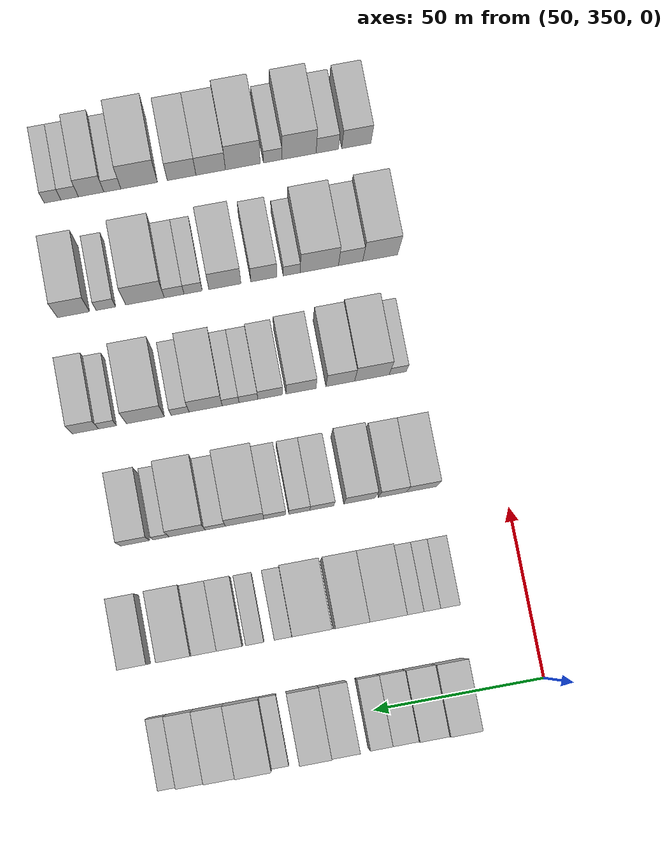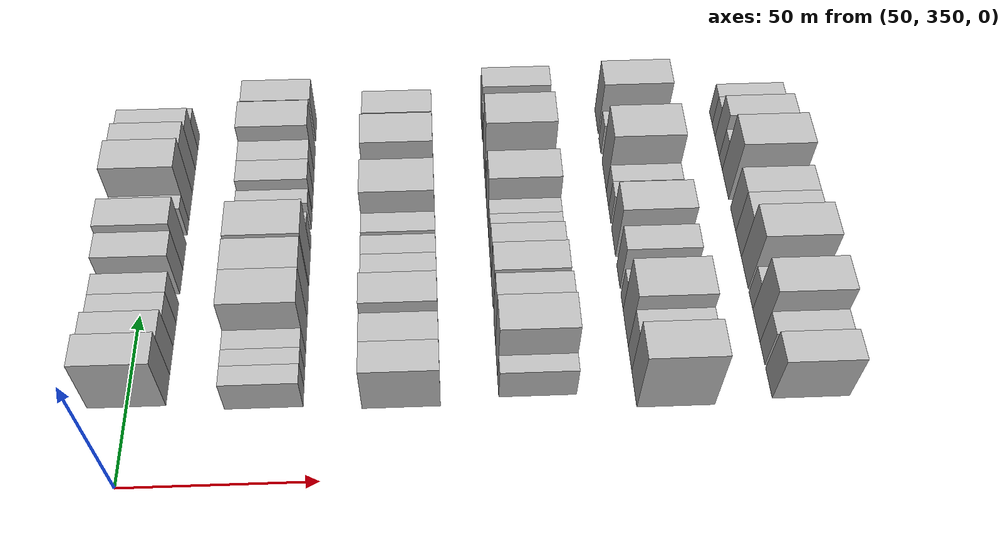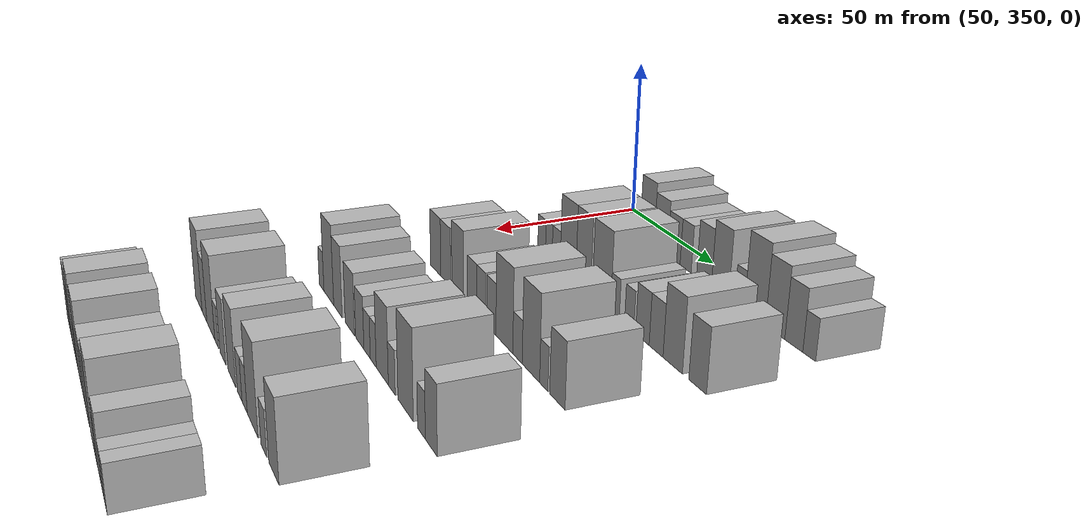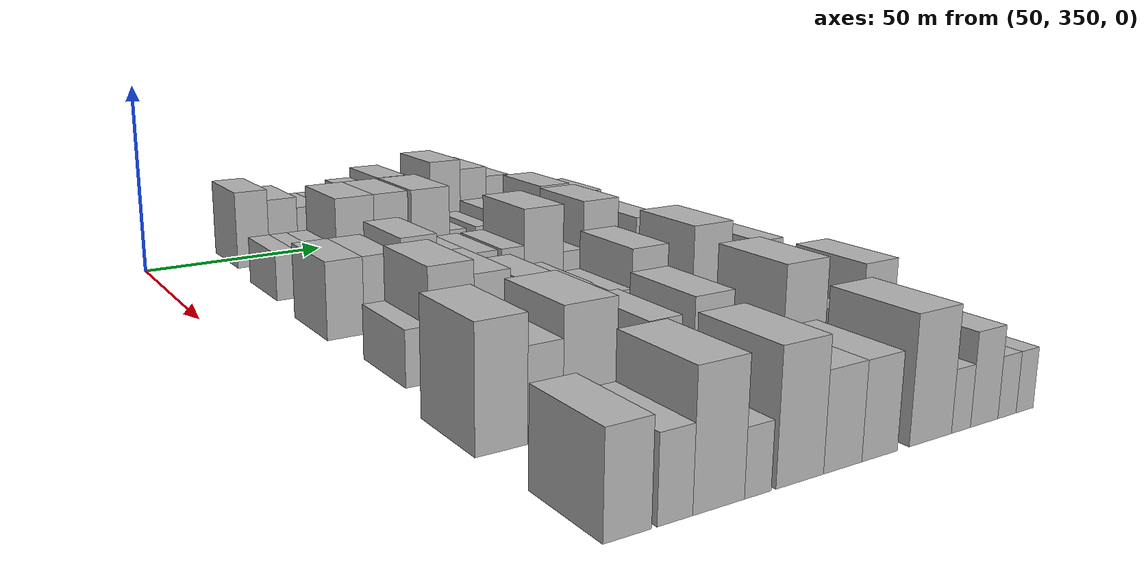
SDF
<sdf version="1.6">
 <world name="default">
  <model name="building_101">
   <static>1</static>
   <pose>50.0000 376.9715 0 0.000000 0.000000 0.000000</pose>
   <link name="link">
    <pose>0 0 10.50 0 0 0</pose>
    <collision name="collision"><geometry><box><size>20.0000 9.0543 21.0000</size></box></geometry></collision>
    <visual name="visual">
     <cast_shadows>0</cast_shadows>
     <geometry><box><size>20.0000 9.0543 21.0000</size></box></geometry>
     <material>
      <script>
       <uri>model://HANNAS_wall/materials/scripts</uri>
       <uri>model://HANNAS_wall/materials/textures</uri>
       <name>vrc/HANNAS_wall</name>
      </script>
     </material>
    </visual>
   </link>
  </model>
  <model name="building_102">
   <static>1</static>
   <pose>50.0000 385.7021 0 0.000000 0.000000 0.000000</pose>
   <link name="link">
    <pose>0 0 9.00 0 0 0</pose>
    <collision name="collision"><geometry><box><size>20.0000 8.4068 18.0000</size></box></geometry></collision>
    <visual name="visual">
     <cast_shadows>0</cast_shadows>
     <geometry><box><size>20.0000 8.4068 18.0000</size></box></geometry>
     <material>
      <script>
       <uri>model://HANNAS_wall/materials/scripts</uri>
       <uri>model://HANNAS_wall/materials/textures</uri>
       <name>vrc/HANNAS_wall</name>
      </script>
     </material>
    </visual>
   </link>
  </model>
  <model name="building_103">
   <static>1</static>
   <pose>50.0000 393.6003 0 0.000000 0.000000 0.000000</pose>
   <link name="link">
    <pose>0 0 7.50 0 0 0</pose>
    <collision name="collision"><geometry><box><size>20.0000 7.3897 15.0000</size></box></geometry></collision>
    <visual name="visual">
     <cast_shadows>0</cast_shadows>
     <geometry><box><size>20.0000 7.3897 15.0000</size></box></geometry>
     <material>
      <script>
       <uri>model://HANNAS_wall/materials/scripts</uri>
       <uri>model://HANNAS_wall/materials/textures</uri>
       <name>vrc/HANNAS_wall</name>
      </script>
     </material>
    </visual>
   </link>
  </model>
  <model name="building_104">
   <static>1</static>
   <pose>50.0000 400.5001 0 0.000000 0.000000 0.000000</pose>
   <link name="link">
    <pose>0 0 7.50 0 0 0</pose>
    <collision name="collision"><geometry><box><size>20.0000 6.4099 15.0000</size></box></geometry></collision>
    <visual name="visual">
     <cast_shadows>0</cast_shadows>
     <geometry><box><size>20.0000 6.4099 15.0000</size></box></geometry>
     <material>
      <script>
       <uri>model://HANNAS_wall/materials/scripts</uri>
       <uri>model://HANNAS_wall/materials/textures</uri>
       <name>vrc/HANNAS_wall</name>
      </script>
     </material>
    </visual>
   </link>
  </model>
  <model name="building_105">
   <static>1</static>
   <pose>50.0000 410.7465 0 0.000000 0.000000 0.000000</pose>
   <link name="link">
    <pose>0 0 9.00 0 0 0</pose>
    <collision name="collision"><geometry><box><size>20.0000 8.0827 18.0000</size></box></geometry></collision>
    <visual name="visual">
     <cast_shadows>0</cast_shadows>
     <geometry><box><size>20.0000 8.0827 18.0000</size></box></geometry>
     <material>
      <script>
       <uri>model://HANNAS_wall/materials/scripts</uri>
       <uri>model://HANNAS_wall/materials/textures</uri>
       <name>vrc/HANNAS_wall</name>
      </script>
     </material>
    </visual>
   </link>
  </model>
  <model name="building_106">
   <static>1</static>
   <pose>50.0000 419.3283 0 0.000000 0.000000 0.000000</pose>
   <link name="link">
    <pose>0 0 10.50 0 0 0</pose>
    <collision name="collision"><geometry><box><size>20.0000 9.0811 21.0000</size></box></geometry></collision>
    <visual name="visual">
     <cast_shadows>0</cast_shadows>
     <geometry><box><size>20.0000 9.0811 21.0000</size></box></geometry>
     <material>
      <script>
       <uri>model://HANNAS_wall/materials/scripts</uri>
       <uri>model://HANNAS_wall/materials/textures</uri>
       <name>vrc/HANNAS_wall</name>
      </script>
     </material>
    </visual>
   </link>
  </model>
  <model name="building_107">
   <static>1</static>
   <pose>50.0000 429.3138 0 0.000000 0.000000 0.000000</pose>
   <link name="link">
    <pose>0 0 6.00 0 0 0</pose>
    <collision name="collision"><geometry><box><size>20.0000 4.8898 12.0000</size></box></geometry></collision>
    <visual name="visual">
     <cast_shadows>0</cast_shadows>
     <geometry><box><size>20.0000 4.8898 12.0000</size></box></geometry>
     <material>
      <script>
       <uri>model://HANNAS_wall/materials/scripts</uri>
       <uri>model://HANNAS_wall/materials/textures</uri>
       <name>vrc/HANNAS_wall</name>
      </script>
     </material>
    </visual>
   </link>
  </model>
  <model name="building_108">
   <static>1</static>
   <pose>50.0000 436.8290 0 0.000000 0.000000 0.000000</pose>
   <link name="link">
    <pose>0 0 12.00 0 0 0</pose>
    <collision name="collision"><geometry><box><size>20.0000 10.1405 24.0000</size></box></geometry></collision>
    <visual name="visual">
     <cast_shadows>0</cast_shadows>
     <geometry><box><size>20.0000 10.1405 24.0000</size></box></geometry>
     <material>
      <script>
       <uri>model://HANNAS_wall/materials/scripts</uri>
       <uri>model://HANNAS_wall/materials/textures</uri>
       <name>vrc/HANNAS_wall</name>
      </script>
     </material>
    </visual>
   </link>
  </model>
  <model name="building_109">
   <static>1</static>
   <pose>50.0000 446.3508 0 0.000000 0.000000 0.000000</pose>
   <link name="link">
    <pose>0 0 10.50 0 0 0</pose>
    <collision name="collision"><geometry><box><size>20.0000 8.9032 21.0000</size></box></geometry></collision>
    <visual name="visual">
     <cast_shadows>0</cast_shadows>
     <geometry><box><size>20.0000 8.9032 21.0000</size></box></geometry>
     <material>
      <script>
       <uri>model://HANNAS_wall/materials/scripts</uri>
       <uri>model://HANNAS_wall/materials/textures</uri>
       <name>vrc/HANNAS_wall</name>
      </script>
     </material>
    </visual>
   </link>
  </model>
  <model name="building_110">
   <static>1</static>
   <pose>50.0000 454.7352 0 0.000000 0.000000 0.000000</pose>
   <link name="link">
    <pose>0 0 9.00 0 0 0</pose>
    <collision name="collision"><geometry><box><size>20.0000 7.8656 18.0000</size></box></geometry></collision>
    <visual name="visual">
     <cast_shadows>0</cast_shadows>
     <geometry><box><size>20.0000 7.8656 18.0000</size></box></geometry>
     <material>
      <script>
       <uri>model://HANNAS_wall/materials/scripts</uri>
       <uri>model://HANNAS_wall/materials/textures</uri>
       <name>vrc/HANNAS_wall</name>
      </script>
     </material>
    </visual>
   </link>
  </model>
  <model name="building_111">
   <static>1</static>
   <pose>50.0000 461.3962 0 0.000000 0.000000 0.000000</pose>
   <link name="link">
    <pose>0 0 6.00 0 0 0</pose>
    <collision name="collision"><geometry><box><size>20.0000 5.4565 12.0000</size></box></geometry></collision>
    <visual name="visual">
     <cast_shadows>0</cast_shadows>
     <geometry><box><size>20.0000 5.4565 12.0000</size></box></geometry>
     <material>
      <script>
       <uri>model://HANNAS_wall/materials/scripts</uri>
       <uri>model://HANNAS_wall/materials/textures</uri>
       <name>vrc/HANNAS_wall</name>
      </script>
     </material>
    </visual>
   </link>
  </model>
  <model name="building_227">
   <static>1</static>
   <pose>85.0000 373.6518 0 0.000000 0.000000 0.000000</pose>
   <link name="link">
    <pose>0 0 6.00 0 0 0</pose>
    <collision name="collision"><geometry><box><size>20.0000 5.6298 12.0000</size></box></geometry></collision>
    <visual name="visual">
     <cast_shadows>0</cast_shadows>
     <geometry><box><size>20.0000 5.6298 12.0000</size></box></geometry>
     <material>
      <script>
       <uri>model://HANNAS_wall/materials/scripts</uri>
       <uri>model://HANNAS_wall/materials/textures</uri>
       <name>vrc/HANNAS_wall</name>
      </script>
     </material>
    </visual>
   </link>
  </model>
  <model name="building_228">
   <static>1</static>
   <pose>85.0000 378.8743 0 0.000000 0.000000 0.000000</pose>
   <link name="link">
    <pose>0 0 6.00 0 0 0</pose>
    <collision name="collision"><geometry><box><size>20.0000 4.8153 12.0000</size></box></geometry></collision>
    <visual name="visual">
     <cast_shadows>0</cast_shadows>
     <geometry><box><size>20.0000 4.8153 12.0000</size></box></geometry>
     <material>
      <script>
       <uri>model://HANNAS_wall/materials/scripts</uri>
       <uri>model://HANNAS_wall/materials/textures</uri>
       <name>vrc/HANNAS_wall</name>
      </script>
     </material>
    </visual>
   </link>
  </model>
  <model name="building_229">
   <static>1</static>
   <pose>85.0000 384.1124 0 0.000000 0.000000 0.000000</pose>
   <link name="link">
    <pose>0 0 6.00 0 0 0</pose>
    <collision name="collision"><geometry><box><size>20.0000 5.6608 12.0000</size></box></geometry></collision>
    <visual name="visual">
     <cast_shadows>0</cast_shadows>
     <geometry><box><size>20.0000 5.6608 12.0000</size></box></geometry>
     <material>
      <script>
       <uri>model://HANNAS_wall/materials/scripts</uri>
       <uri>model://HANNAS_wall/materials/textures</uri>
       <name>vrc/HANNAS_wall</name>
      </script>
     </material>
    </visual>
   </link>
  </model>
  <model name="building_230">
   <static>1</static>
   <pose>85.0000 392.2207 0 0.000000 0.000000 0.000000</pose>
   <link name="link">
    <pose>0 0 12.00 0 0 0</pose>
    <collision name="collision"><geometry><box><size>20.0000 10.5559 24.0000</size></box></geometry></collision>
    <visual name="visual">
     <cast_shadows>0</cast_shadows>
     <geometry><box><size>20.0000 10.5559 24.0000</size></box></geometry>
     <material>
      <script>
       <uri>model://HANNAS_wall/materials/scripts</uri>
       <uri>model://HANNAS_wall/materials/textures</uri>
       <name>vrc/HANNAS_wall</name>
      </script>
     </material>
    </visual>
   </link>
  </model>
  <model name="building_231">
   <static>1</static>
   <pose>85.0000 402.3198 0 0.000000 0.000000 0.000000</pose>
   <link name="link">
    <pose>0 0 12.00 0 0 0</pose>
    <collision name="collision"><geometry><box><size>20.0000 9.6423 24.0000</size></box></geometry></collision>
    <visual name="visual">
     <cast_shadows>0</cast_shadows>
     <geometry><box><size>20.0000 9.6423 24.0000</size></box></geometry>
     <material>
      <script>
       <uri>model://HANNAS_wall/materials/scripts</uri>
       <uri>model://HANNAS_wall/materials/textures</uri>
       <name>vrc/HANNAS_wall</name>
      </script>
     </material>
    </visual>
   </link>
  </model>
  <model name="building_232">
   <static>1</static>
   <pose>85.0000 413.7458 0 0.000000 0.000000 0.000000</pose>
   <link name="link">
    <pose>0 0 12.00 0 0 0</pose>
    <collision name="collision"><geometry><box><size>20.0000 11.2096 24.0000</size></box></geometry></collision>
    <visual name="visual">
     <cast_shadows>0</cast_shadows>
     <geometry><box><size>20.0000 11.2096 24.0000</size></box></geometry>
     <material>
      <script>
       <uri>model://HANNAS_wall/materials/scripts</uri>
       <uri>model://HANNAS_wall/materials/textures</uri>
       <name>vrc/HANNAS_wall</name>
      </script>
     </material>
    </visual>
   </link>
  </model>
  <model name="building_233">
   <static>1</static>
   <pose>85.0000 421.8746 0 0.000000 0.000000 0.000000</pose>
   <link name="link">
    <pose>0 0 6.00 0 0 0</pose>
    <collision name="collision"><geometry><box><size>20.0000 5.0479 12.0000</size></box></geometry></collision>
    <visual name="visual">
     <cast_shadows>0</cast_shadows>
     <geometry><box><size>20.0000 5.0479 12.0000</size></box></geometry>
     <material>
      <script>
       <uri>model://HANNAS_wall/materials/scripts</uri>
       <uri>model://HANNAS_wall/materials/textures</uri>
       <name>vrc/HANNAS_wall</name>
      </script>
     </material>
    </visual>
   </link>
  </model>
  <model name="building_234">
   <static>1</static>
   <pose>85.0000 430.0016 0 0.000000 0.000000 0.000000</pose>
   <link name="link">
    <pose>0 0 6.00 0 0 0</pose>
    <collision name="collision"><geometry><box><size>20.0000 5.2061 12.0000</size></box></geometry></collision>
    <visual name="visual">
     <cast_shadows>0</cast_shadows>
     <geometry><box><size>20.0000 5.2061 12.0000</size></box></geometry>
     <material>
      <script>
       <uri>model://HANNAS_wall/materials/scripts</uri>
       <uri>model://HANNAS_wall/materials/textures</uri>
       <name>vrc/HANNAS_wall</name>
      </script>
     </material>
    </visual>
   </link>
  </model>
  <model name="building_235">
   <static>1</static>
   <pose>85.0000 437.2531 0 0.000000 0.000000 0.000000</pose>
   <link name="link">
    <pose>0 0 7.50 0 0 0</pose>
    <collision name="collision"><geometry><box><size>20.0000 7.2970 15.0000</size></box></geometry></collision>
    <visual name="visual">
     <cast_shadows>0</cast_shadows>
     <geometry><box><size>20.0000 7.2970 15.0000</size></box></geometry>
     <material>
      <script>
       <uri>model://HANNAS_wall/materials/scripts</uri>
       <uri>model://HANNAS_wall/materials/textures</uri>
       <name>vrc/HANNAS_wall</name>
      </script>
     </material>
    </visual>
   </link>
  </model>
  <model name="building_236">
   <static>1</static>
   <pose>85.0000 444.5015 0 0.000000 0.000000 0.000000</pose>
   <link name="link">
    <pose>0 0 7.50 0 0 0</pose>
    <collision name="collision"><geometry><box><size>20.0000 7.2000 15.0000</size></box></geometry></collision>
    <visual name="visual">
     <cast_shadows>0</cast_shadows>
     <geometry><box><size>20.0000 7.2000 15.0000</size></box></geometry>
     <material>
      <script>
       <uri>model://HANNAS_wall/materials/scripts</uri>
       <uri>model://HANNAS_wall/materials/textures</uri>
       <name>vrc/HANNAS_wall</name>
      </script>
     </material>
    </visual>
   </link>
  </model>
  <model name="building_237">
   <static>1</static>
   <pose>85.0000 452.9083 0 0.000000 0.000000 0.000000</pose>
   <link name="link">
    <pose>0 0 10.50 0 0 0</pose>
    <collision name="collision"><geometry><box><size>20.0000 9.6135 21.0000</size></box></geometry></collision>
    <visual name="visual">
     <cast_shadows>0</cast_shadows>
     <geometry><box><size>20.0000 9.6135 21.0000</size></box></geometry>
     <material>
      <script>
       <uri>model://HANNAS_wall/materials/scripts</uri>
       <uri>model://HANNAS_wall/materials/textures</uri>
       <name>vrc/HANNAS_wall</name>
      </script>
     </material>
    </visual>
   </link>
  </model>
  <model name="building_238">
   <static>1</static>
   <pose>85.0000 464.8194 0 0.000000 0.000000 0.000000</pose>
   <link name="link">
    <pose>0 0 9.00 0 0 0</pose>
    <collision name="collision"><geometry><box><size>20.0000 8.2087 18.0000</size></box></geometry></collision>
    <visual name="visual">
     <cast_shadows>0</cast_shadows>
     <geometry><box><size>20.0000 8.2087 18.0000</size></box></geometry>
     <material>
      <script>
       <uri>model://HANNAS_wall/materials/scripts</uri>
       <uri>model://HANNAS_wall/materials/textures</uri>
       <name>vrc/HANNAS_wall</name>
      </script>
     </material>
    </visual>
   </link>
  </model>
  <model name="building_357">
   <static>1</static>
   <pose>120.0000 374.1642 0 0.000000 0.000000 0.000000</pose>
   <link name="link">
    <pose>0 0 9.00 0 0 0</pose>
    <collision name="collision"><geometry><box><size>20.0000 8.9118 18.0000</size></box></geometry></collision>
    <visual name="visual">
     <cast_shadows>0</cast_shadows>
     <geometry><box><size>20.0000 8.9118 18.0000</size></box></geometry>
     <material>
      <script>
       <uri>model://HANNAS_wall/materials/scripts</uri>
       <uri>model://HANNAS_wall/materials/textures</uri>
       <name>vrc/HANNAS_wall</name>
      </script>
     </material>
    </visual>
   </link>
  </model>
  <model name="building_358">
   <static>1</static>
   <pose>120.0000 382.7913 0 0.000000 0.000000 0.000000</pose>
   <link name="link">
    <pose>0 0 9.00 0 0 0</pose>
    <collision name="collision"><geometry><box><size>20.0000 8.3424 18.0000</size></box></geometry></collision>
    <visual name="visual">
     <cast_shadows>0</cast_shadows>
     <geometry><box><size>20.0000 8.3424 18.0000</size></box></geometry>
     <material>
      <script>
       <uri>model://HANNAS_wall/materials/scripts</uri>
       <uri>model://HANNAS_wall/materials/textures</uri>
       <name>vrc/HANNAS_wall</name>
      </script>
     </material>
    </visual>
   </link>
  </model>
  <model name="building_359">
   <static>1</static>
   <pose>120.0000 392.5928 0 0.000000 0.000000 0.000000</pose>
   <link name="link">
    <pose>0 0 10.50 0 0 0</pose>
    <collision name="collision"><geometry><box><size>20.0000 9.2606 21.0000</size></box></geometry></collision>
    <visual name="visual">
     <cast_shadows>0</cast_shadows>
     <geometry><box><size>20.0000 9.2606 21.0000</size></box></geometry>
     <material>
      <script>
       <uri>model://HANNAS_wall/materials/scripts</uri>
       <uri>model://HANNAS_wall/materials/textures</uri>
       <name>vrc/HANNAS_wall</name>
      </script>
     </material>
    </visual>
   </link>
  </model>
  <model name="building_360">
   <static>1</static>
   <pose>120.0000 403.7925 0 0.000000 0.000000 0.000000</pose>
   <link name="link">
    <pose>0 0 7.50 0 0 0</pose>
    <collision name="collision"><geometry><box><size>20.0000 7.1389 15.0000</size></box></geometry></collision>
    <visual name="visual">
     <cast_shadows>0</cast_shadows>
     <geometry><box><size>20.0000 7.1389 15.0000</size></box></geometry>
     <material>
      <script>
       <uri>model://HANNAS_wall/materials/scripts</uri>
       <uri>model://HANNAS_wall/materials/textures</uri>
       <name>vrc/HANNAS_wall</name>
      </script>
     </material>
    </visual>
   </link>
  </model>
  <model name="building_361">
   <static>1</static>
   <pose>120.0000 410.4511 0 0.000000 0.000000 0.000000</pose>
   <link name="link">
    <pose>0 0 7.50 0 0 0</pose>
    <collision name="collision"><geometry><box><size>20.0000 6.1782 15.0000</size></box></geometry></collision>
    <visual name="visual">
     <cast_shadows>0</cast_shadows>
     <geometry><box><size>20.0000 6.1782 15.0000</size></box></geometry>
     <material>
      <script>
       <uri>model://HANNAS_wall/materials/scripts</uri>
       <uri>model://HANNAS_wall/materials/textures</uri>
       <name>vrc/HANNAS_wall</name>
      </script>
     </material>
    </visual>
   </link>
  </model>
  <model name="building_362">
   <static>1</static>
   <pose>120.0000 417.7788 0 0.000000 0.000000 0.000000</pose>
   <link name="link">
    <pose>0 0 7.50 0 0 0</pose>
    <collision name="collision"><geometry><box><size>20.0000 6.4772 15.0000</size></box></geometry></collision>
    <visual name="visual">
     <cast_shadows>0</cast_shadows>
     <geometry><box><size>20.0000 6.4772 15.0000</size></box></geometry>
     <material>
      <script>
       <uri>model://HANNAS_wall/materials/scripts</uri>
       <uri>model://HANNAS_wall/materials/textures</uri>
       <name>vrc/HANNAS_wall</name>
      </script>
     </material>
    </visual>
   </link>
  </model>
  <model name="building_363">
   <static>1</static>
   <pose>120.0000 426.6754 0 0.000000 0.000000 0.000000</pose>
   <link name="link">
    <pose>0 0 12.00 0 0 0</pose>
    <collision name="collision"><geometry><box><size>20.0000 11.3161 24.0000</size></box></geometry></collision>
    <visual name="visual">
     <cast_shadows>0</cast_shadows>
     <geometry><box><size>20.0000 11.3161 24.0000</size></box></geometry>
     <material>
      <script>
       <uri>model://HANNAS_wall/materials/scripts</uri>
       <uri>model://HANNAS_wall/materials/textures</uri>
       <name>vrc/HANNAS_wall</name>
      </script>
     </material>
    </visual>
   </link>
  </model>
  <model name="building_364">
   <static>1</static>
   <pose>120.0000 435.3300 0 0.000000 0.000000 0.000000</pose>
   <link name="link">
    <pose>0 0 6.00 0 0 0</pose>
    <collision name="collision"><geometry><box><size>20.0000 5.9932 12.0000</size></box></geometry></collision>
    <visual name="visual">
     <cast_shadows>0</cast_shadows>
     <geometry><box><size>20.0000 5.9932 12.0000</size></box></geometry>
     <material>
      <script>
       <uri>model://HANNAS_wall/materials/scripts</uri>
       <uri>model://HANNAS_wall/materials/textures</uri>
       <name>vrc/HANNAS_wall</name>
      </script>
     </material>
    </visual>
   </link>
  </model>
  <model name="building_365">
   <static>1</static>
   <pose>120.0000 443.6396 0 0.000000 0.000000 0.000000</pose>
   <link name="link">
    <pose>0 0 12.00 0 0 0</pose>
    <collision name="collision"><geometry><box><size>20.0000 10.6261 24.0000</size></box></geometry></collision>
    <visual name="visual">
     <cast_shadows>0</cast_shadows>
     <geometry><box><size>20.0000 10.6261 24.0000</size></box></geometry>
     <material>
      <script>
       <uri>model://HANNAS_wall/materials/scripts</uri>
       <uri>model://HANNAS_wall/materials/textures</uri>
       <name>vrc/HANNAS_wall</name>
      </script>
     </material>
    </visual>
   </link>
  </model>
  <model name="building_366">
   <static>1</static>
   <pose>120.0000 451.3530 0 0.000000 0.000000 0.000000</pose>
   <link name="link">
    <pose>0 0 6.00 0 0 0</pose>
    <collision name="collision"><geometry><box><size>20.0000 4.8008 12.0000</size></box></geometry></collision>
    <visual name="visual">
     <cast_shadows>0</cast_shadows>
     <geometry><box><size>20.0000 4.8008 12.0000</size></box></geometry>
     <material>
      <script>
       <uri>model://HANNAS_wall/materials/scripts</uri>
       <uri>model://HANNAS_wall/materials/textures</uri>
       <name>vrc/HANNAS_wall</name>
      </script>
     </material>
    </visual>
   </link>
  </model>
  <model name="building_367">
   <static>1</static>
   <pose>120.0000 459.0405 0 0.000000 0.000000 0.000000</pose>
   <link name="link">
    <pose>0 0 9.00 0 0 0</pose>
    <collision name="collision"><geometry><box><size>20.0000 8.5742 18.0000</size></box></geometry></collision>
    <visual name="visual">
     <cast_shadows>0</cast_shadows>
     <geometry><box><size>20.0000 8.5742 18.0000</size></box></geometry>
     <material>
      <script>
       <uri>model://HANNAS_wall/materials/scripts</uri>
       <uri>model://HANNAS_wall/materials/textures</uri>
       <name>vrc/HANNAS_wall</name>
      </script>
     </material>
    </visual>
   </link>
  </model>
  <model name="building_483">
   <static>1</static>
   <pose>155.0000 374.3018 0 0.000000 0.000000 0.000000</pose>
   <link name="link">
    <pose>0 0 6.00 0 0 0</pose>
    <collision name="collision"><geometry><box><size>20.0000 5.1540 12.0000</size></box></geometry></collision>
    <visual name="visual">
     <cast_shadows>0</cast_shadows>
     <geometry><box><size>20.0000 5.1540 12.0000</size></box></geometry>
     <material>
      <script>
       <uri>model://HANNAS_wall/materials/scripts</uri>
       <uri>model://HANNAS_wall/materials/textures</uri>
       <name>vrc/HANNAS_wall</name>
      </script>
     </material>
    </visual>
   </link>
  </model>
  <model name="building_484">
   <static>1</static>
   <pose>155.0000 382.0667 0 0.000000 0.000000 0.000000</pose>
   <link name="link">
    <pose>0 0 12.00 0 0 0</pose>
    <collision name="collision"><geometry><box><size>20.0000 10.3757 24.0000</size></box></geometry></collision>
    <visual name="visual">
     <cast_shadows>0</cast_shadows>
     <geometry><box><size>20.0000 10.3757 24.0000</size></box></geometry>
     <material>
      <script>
       <uri>model://HANNAS_wall/materials/scripts</uri>
       <uri>model://HANNAS_wall/materials/textures</uri>
       <name>vrc/HANNAS_wall</name>
      </script>
     </material>
    </visual>
   </link>
  </model>
  <model name="building_485">
   <static>1</static>
   <pose>155.0000 391.5425 0 0.000000 0.000000 0.000000</pose>
   <link name="link">
    <pose>0 0 10.50 0 0 0</pose>
    <collision name="collision"><geometry><box><size>20.0000 8.5760 21.0000</size></box></geometry></collision>
    <visual name="visual">
     <cast_shadows>0</cast_shadows>
     <geometry><box><size>20.0000 8.5760 21.0000</size></box></geometry>
     <material>
      <script>
       <uri>model://HANNAS_wall/materials/scripts</uri>
       <uri>model://HANNAS_wall/materials/textures</uri>
       <name>vrc/HANNAS_wall</name>
      </script>
     </material>
    </visual>
   </link>
  </model>
  <model name="building_486">
   <static>1</static>
   <pose>155.0000 403.3199 0 0.000000 0.000000 0.000000</pose>
   <link name="link">
    <pose>0 0 9.00 0 0 0</pose>
    <collision name="collision"><geometry><box><size>20.0000 8.9786 18.0000</size></box></geometry></collision>
    <visual name="visual">
     <cast_shadows>0</cast_shadows>
     <geometry><box><size>20.0000 8.9786 18.0000</size></box></geometry>
     <material>
      <script>
       <uri>model://HANNAS_wall/materials/scripts</uri>
       <uri>model://HANNAS_wall/materials/textures</uri>
       <name>vrc/HANNAS_wall</name>
      </script>
     </material>
    </visual>
   </link>
  </model>
  <model name="building_487">
   <static>1</static>
   <pose>155.0000 412.5321 0 0.000000 0.000000 0.000000</pose>
   <link name="link">
    <pose>0 0 7.50 0 0 0</pose>
    <collision name="collision"><geometry><box><size>20.0000 7.4459 15.0000</size></box></geometry></collision>
    <visual name="visual">
     <cast_shadows>0</cast_shadows>
     <geometry><box><size>20.0000 7.4459 15.0000</size></box></geometry>
     <material>
      <script>
       <uri>model://HANNAS_wall/materials/scripts</uri>
       <uri>model://HANNAS_wall/materials/textures</uri>
       <name>vrc/HANNAS_wall</name>
      </script>
     </material>
    </visual>
   </link>
  </model>
  <model name="building_488">
   <static>1</static>
   <pose>155.0000 419.0543 0 0.000000 0.000000 0.000000</pose>
   <link name="link">
    <pose>0 0 6.00 0 0 0</pose>
    <collision name="collision"><geometry><box><size>20.0000 5.5986 12.0000</size></box></geometry></collision>
    <visual name="visual">
     <cast_shadows>0</cast_shadows>
     <geometry><box><size>20.0000 5.5986 12.0000</size></box></geometry>
     <material>
      <script>
       <uri>model://HANNAS_wall/materials/scripts</uri>
       <uri>model://HANNAS_wall/materials/textures</uri>
       <name>vrc/HANNAS_wall</name>
      </script>
     </material>
    </visual>
   </link>
  </model>
  <model name="building_489">
   <static>1</static>
   <pose>155.0000 424.3448 0 0.000000 0.000000 0.000000</pose>
   <link name="link">
    <pose>0 0 6.00 0 0 0</pose>
    <collision name="collision"><geometry><box><size>20.0000 4.9825 12.0000</size></box></geometry></collision>
    <visual name="visual">
     <cast_shadows>0</cast_shadows>
     <geometry><box><size>20.0000 4.9825 12.0000</size></box></geometry>
     <material>
      <script>
       <uri>model://HANNAS_wall/materials/scripts</uri>
       <uri>model://HANNAS_wall/materials/textures</uri>
       <name>vrc/HANNAS_wall</name>
      </script>
     </material>
    </visual>
   </link>
  </model>
  <model name="building_490">
   <static>1</static>
   <pose>155.0000 431.7964 0 0.000000 0.000000 0.000000</pose>
   <link name="link">
    <pose>0 0 10.50 0 0 0</pose>
    <collision name="collision"><geometry><box><size>20.0000 9.9206 21.0000</size></box></geometry></collision>
    <visual name="visual">
     <cast_shadows>0</cast_shadows>
     <geometry><box><size>20.0000 9.9206 21.0000</size></box></geometry>
     <material>
      <script>
       <uri>model://HANNAS_wall/materials/scripts</uri>
       <uri>model://HANNAS_wall/materials/textures</uri>
       <name>vrc/HANNAS_wall</name>
      </script>
     </material>
    </visual>
   </link>
  </model>
  <model name="building_491">
   <static>1</static>
   <pose>155.0000 439.4414 0 0.000000 0.000000 0.000000</pose>
   <link name="link">
    <pose>0 0 6.00 0 0 0</pose>
    <collision name="collision"><geometry><box><size>20.0000 5.3695 12.0000</size></box></geometry></collision>
    <visual name="visual">
     <cast_shadows>0</cast_shadows>
     <geometry><box><size>20.0000 5.3695 12.0000</size></box></geometry>
     <material>
      <script>
       <uri>model://HANNAS_wall/materials/scripts</uri>
       <uri>model://HANNAS_wall/materials/textures</uri>
       <name>vrc/HANNAS_wall</name>
      </script>
     </material>
    </visual>
   </link>
  </model>
  <model name="building_492">
   <static>1</static>
   <pose>155.0000 449.7636 0 0.000000 0.000000 0.000000</pose>
   <link name="link">
    <pose>0 0 12.00 0 0 0</pose>
    <collision name="collision"><geometry><box><size>20.0000 11.2748 24.0000</size></box></geometry></collision>
    <visual name="visual">
     <cast_shadows>0</cast_shadows>
     <geometry><box><size>20.0000 11.2748 24.0000</size></box></geometry>
     <material>
      <script>
       <uri>model://HANNAS_wall/materials/scripts</uri>
       <uri>model://HANNAS_wall/materials/textures</uri>
       <name>vrc/HANNAS_wall</name>
      </script>
     </material>
    </visual>
   </link>
  </model>
  <model name="building_493">
   <static>1</static>
   <pose>155.0000 461.0590 0 0.000000 0.000000 0.000000</pose>
   <link name="link">
    <pose>0 0 6.00 0 0 0</pose>
    <collision name="collision"><geometry><box><size>20.0000 5.3159 12.0000</size></box></geometry></collision>
    <visual name="visual">
     <cast_shadows>0</cast_shadows>
     <geometry><box><size>20.0000 5.3159 12.0000</size></box></geometry>
     <material>
      <script>
       <uri>model://HANNAS_wall/materials/scripts</uri>
       <uri>model://HANNAS_wall/materials/textures</uri>
       <name>vrc/HANNAS_wall</name>
      </script>
     </material>
    </visual>
   </link>
  </model>
  <model name="building_494">
   <static>1</static>
   <pose>155.0000 467.6282 0 0.000000 0.000000 0.000000</pose>
   <link name="link">
    <pose>0 0 9.00 0 0 0</pose>
    <collision name="collision"><geometry><box><size>20.0000 7.8225 18.0000</size></box></geometry></collision>
    <visual name="visual">
     <cast_shadows>0</cast_shadows>
     <geometry><box><size>20.0000 7.8225 18.0000</size></box></geometry>
     <material>
      <script>
       <uri>model://HANNAS_wall/materials/scripts</uri>
       <uri>model://HANNAS_wall/materials/textures</uri>
       <name>vrc/HANNAS_wall</name>
      </script>
     </material>
    </visual>
   </link>
  </model>
  <model name="building_606">
   <static>1</static>
   <pose>190.0000 372.7146 0 0.000000 0.000000 0.000000</pose>
   <link name="link">
    <pose>0 0 12.00 0 0 0</pose>
    <collision name="collision"><geometry><box><size>20.0000 10.5319 24.0000</size></box></geometry></collision>
    <visual name="visual">
     <cast_shadows>0</cast_shadows>
     <geometry><box><size>20.0000 10.5319 24.0000</size></box></geometry>
     <material>
      <script>
       <uri>model://HANNAS_wall/materials/scripts</uri>
       <uri>model://HANNAS_wall/materials/textures</uri>
       <name>vrc/HANNAS_wall</name>
      </script>
     </material>
    </visual>
   </link>
  </model>
  <model name="building_607">
   <static>1</static>
   <pose>190.0000 381.6536 0 0.000000 0.000000 0.000000</pose>
   <link name="link">
    <pose>0 0 9.00 0 0 0</pose>
    <collision name="collision"><geometry><box><size>20.0000 7.3461 18.0000</size></box></geometry></collision>
    <visual name="visual">
     <cast_shadows>0</cast_shadows>
     <geometry><box><size>20.0000 7.3461 18.0000</size></box></geometry>
     <material>
      <script>
       <uri>model://HANNAS_wall/materials/scripts</uri>
       <uri>model://HANNAS_wall/materials/textures</uri>
       <name>vrc/HANNAS_wall</name>
      </script>
     </material>
    </visual>
   </link>
  </model>
  <model name="building_608">
   <static>1</static>
   <pose>190.0000 391.1220 0 0.000000 0.000000 0.000000</pose>
   <link name="link">
    <pose>0 0 12.00 0 0 0</pose>
    <collision name="collision"><geometry><box><size>20.0000 11.5907 24.0000</size></box></geometry></collision>
    <visual name="visual">
     <cast_shadows>0</cast_shadows>
     <geometry><box><size>20.0000 11.5907 24.0000</size></box></geometry>
     <material>
      <script>
       <uri>model://HANNAS_wall/materials/scripts</uri>
       <uri>model://HANNAS_wall/materials/textures</uri>
       <name>vrc/HANNAS_wall</name>
      </script>
     </material>
    </visual>
   </link>
  </model>
  <model name="building_609">
   <static>1</static>
   <pose>190.0000 399.4624 0 0.000000 0.000000 0.000000</pose>
   <link name="link">
    <pose>0 0 6.00 0 0 0</pose>
    <collision name="collision"><geometry><box><size>20.0000 5.0900 12.0000</size></box></geometry></collision>
    <visual name="visual">
     <cast_shadows>0</cast_shadows>
     <geometry><box><size>20.0000 5.0900 12.0000</size></box></geometry>
     <material>
      <script>
       <uri>model://HANNAS_wall/materials/scripts</uri>
       <uri>model://HANNAS_wall/materials/textures</uri>
       <name>vrc/HANNAS_wall</name>
      </script>
     </material>
    </visual>
   </link>
  </model>
  <model name="building_610">
   <static>1</static>
   <pose>190.0000 407.8961 0 0.000000 0.000000 0.000000</pose>
   <link name="link">
    <pose>0 0 9.00 0 0 0</pose>
    <collision name="collision"><geometry><box><size>20.0000 7.7774 18.0000</size></box></geometry></collision>
    <visual name="visual">
     <cast_shadows>0</cast_shadows>
     <geometry><box><size>20.0000 7.7774 18.0000</size></box></geometry>
     <material>
      <script>
       <uri>model://HANNAS_wall/materials/scripts</uri>
       <uri>model://HANNAS_wall/materials/textures</uri>
       <name>vrc/HANNAS_wall</name>
      </script>
     </material>
    </visual>
   </link>
  </model>
  <model name="building_611">
   <static>1</static>
   <pose>190.0000 419.6159 0 0.000000 0.000000 0.000000</pose>
   <link name="link">
    <pose>0 0 10.50 0 0 0</pose>
    <collision name="collision"><geometry><box><size>20.0000 9.6622 21.0000</size></box></geometry></collision>
    <visual name="visual">
     <cast_shadows>0</cast_shadows>
     <geometry><box><size>20.0000 9.6622 21.0000</size></box></geometry>
     <material>
      <script>
       <uri>model://HANNAS_wall/materials/scripts</uri>
       <uri>model://HANNAS_wall/materials/textures</uri>
       <name>vrc/HANNAS_wall</name>
      </script>
     </material>
    </visual>
   </link>
  </model>
  <model name="building_612">
   <static>1</static>
   <pose>190.0000 429.1848 0 0.000000 0.000000 0.000000</pose>
   <link name="link">
    <pose>0 0 6.00 0 0 0</pose>
    <collision name="collision"><geometry><box><size>20.0000 5.4756 12.0000</size></box></geometry></collision>
    <visual name="visual">
     <cast_shadows>0</cast_shadows>
     <geometry><box><size>20.0000 5.4756 12.0000</size></box></geometry>
     <material>
      <script>
       <uri>model://HANNAS_wall/materials/scripts</uri>
       <uri>model://HANNAS_wall/materials/textures</uri>
       <name>vrc/HANNAS_wall</name>
      </script>
     </material>
    </visual>
   </link>
  </model>
  <model name="building_613">
   <static>1</static>
   <pose>190.0000 434.9047 0 0.000000 0.000000 0.000000</pose>
   <link name="link">
    <pose>0 0 6.00 0 0 0</pose>
    <collision name="collision"><geometry><box><size>20.0000 5.9642 12.0000</size></box></geometry></collision>
    <visual name="visual">
     <cast_shadows>0</cast_shadows>
     <geometry><box><size>20.0000 5.9642 12.0000</size></box></geometry>
     <material>
      <script>
       <uri>model://HANNAS_wall/materials/scripts</uri>
       <uri>model://HANNAS_wall/materials/textures</uri>
       <name>vrc/HANNAS_wall</name>
      </script>
     </material>
    </visual>
   </link>
  </model>
  <model name="building_614">
   <static>1</static>
   <pose>190.0000 443.7091 0 0.000000 0.000000 0.000000</pose>
   <link name="link">
    <pose>0 0 12.00 0 0 0</pose>
    <collision name="collision"><geometry><box><size>20.0000 11.6445 24.0000</size></box></geometry></collision>
    <visual name="visual">
     <cast_shadows>0</cast_shadows>
     <geometry><box><size>20.0000 11.6445 24.0000</size></box></geometry>
     <material>
      <script>
       <uri>model://HANNAS_wall/materials/scripts</uri>
       <uri>model://HANNAS_wall/materials/textures</uri>
       <name>vrc/HANNAS_wall</name>
      </script>
     </material>
    </visual>
   </link>
  </model>
  <model name="building_615">
   <static>1</static>
   <pose>190.0000 455.4534 0 0.000000 0.000000 0.000000</pose>
   <link name="link">
    <pose>0 0 6.00 0 0 0</pose>
    <collision name="collision"><geometry><box><size>20.0000 5.8441 12.0000</size></box></geometry></collision>
    <visual name="visual">
     <cast_shadows>0</cast_shadows>
     <geometry><box><size>20.0000 5.8441 12.0000</size></box></geometry>
     <material>
      <script>
       <uri>model://HANNAS_wall/materials/scripts</uri>
       <uri>model://HANNAS_wall/materials/textures</uri>
       <name>vrc/HANNAS_wall</name>
      </script>
     </material>
    </visual>
   </link>
  </model>
  <model name="building_616">
   <static>1</static>
   <pose>190.0000 465.1991 0 0.000000 0.000000 0.000000</pose>
   <link name="link">
    <pose>0 0 10.50 0 0 0</pose>
    <collision name="collision"><geometry><box><size>20.0000 9.6474 21.0000</size></box></geometry></collision>
    <visual name="visual">
     <cast_shadows>0</cast_shadows>
     <geometry><box><size>20.0000 9.6474 21.0000</size></box></geometry>
     <material>
      <script>
       <uri>model://HANNAS_wall/materials/scripts</uri>
       <uri>model://HANNAS_wall/materials/textures</uri>
       <name>vrc/HANNAS_wall</name>
      </script>
     </material>
    </visual>
   </link>
  </model>
  <model name="building_735">
   <static>1</static>
   <pose>225.0000 373.1341 0 0.000000 0.000000 0.000000</pose>
   <link name="link">
    <pose>0 0 9.00 0 0 0</pose>
    <collision name="collision"><geometry><box><size>20.0000 8.8824 18.0000</size></box></geometry></collision>
    <visual name="visual">
     <cast_shadows>0</cast_shadows>
     <geometry><box><size>20.0000 8.8824 18.0000</size></box></geometry>
     <material>
      <script>
       <uri>model://HANNAS_wall/materials/scripts</uri>
       <uri>model://HANNAS_wall/materials/textures</uri>
       <name>vrc/HANNAS_wall</name>
      </script>
     </material>
    </visual>
   </link>
  </model>
  <model name="building_736">
   <static>1</static>
   <pose>225.0000 381.9895 0 0.000000 0.000000 0.000000</pose>
   <link name="link">
    <pose>0 0 7.50 0 0 0</pose>
    <collision name="collision"><geometry><box><size>20.0000 6.8284 15.0000</size></box></geometry></collision>
    <visual name="visual">
     <cast_shadows>0</cast_shadows>
     <geometry><box><size>20.0000 6.8284 15.0000</size></box></geometry>
     <material>
      <script>
       <uri>model://HANNAS_wall/materials/scripts</uri>
       <uri>model://HANNAS_wall/materials/textures</uri>
       <name>vrc/HANNAS_wall</name>
      </script>
     </material>
    </visual>
   </link>
  </model>
  <model name="building_737">
   <static>1</static>
   <pose>225.0000 390.6119 0 0.000000 0.000000 0.000000</pose>
   <link name="link">
    <pose>0 0 12.00 0 0 0</pose>
    <collision name="collision"><geometry><box><size>20.0000 10.4163 24.0000</size></box></geometry></collision>
    <visual name="visual">
     <cast_shadows>0</cast_shadows>
     <geometry><box><size>20.0000 10.4163 24.0000</size></box></geometry>
     <material>
      <script>
       <uri>model://HANNAS_wall/materials/scripts</uri>
       <uri>model://HANNAS_wall/materials/textures</uri>
       <name>vrc/HANNAS_wall</name>
      </script>
     </material>
    </visual>
   </link>
  </model>
  <model name="building_738">
   <static>1</static>
   <pose>225.0000 398.6453 0 0.000000 0.000000 0.000000</pose>
   <link name="link">
    <pose>0 0 6.00 0 0 0</pose>
    <collision name="collision"><geometry><box><size>20.0000 5.6505 12.0000</size></box></geometry></collision>
    <visual name="visual">
     <cast_shadows>0</cast_shadows>
     <geometry><box><size>20.0000 5.6505 12.0000</size></box></geometry>
     <material>
      <script>
       <uri>model://HANNAS_wall/materials/scripts</uri>
       <uri>model://HANNAS_wall/materials/textures</uri>
       <name>vrc/HANNAS_wall</name>
      </script>
     </material>
    </visual>
   </link>
  </model>
  <model name="building_739">
   <static>1</static>
   <pose>225.0000 407.7547 0 0.000000 0.000000 0.000000</pose>
   <link name="link">
    <pose>0 0 12.00 0 0 0</pose>
    <collision name="collision"><geometry><box><size>20.0000 10.5682 24.0000</size></box></geometry></collision>
    <visual name="visual">
     <cast_shadows>0</cast_shadows>
     <geometry><box><size>20.0000 10.5682 24.0000</size></box></geometry>
     <material>
      <script>
       <uri>model://HANNAS_wall/materials/scripts</uri>
       <uri>model://HANNAS_wall/materials/textures</uri>
       <name>vrc/HANNAS_wall</name>
      </script>
     </material>
    </visual>
   </link>
  </model>
  <model name="building_740">
   <static>1</static>
   <pose>225.0000 417.5142 0 0.000000 0.000000 0.000000</pose>
   <link name="link">
    <pose>0 0 9.00 0 0 0</pose>
    <collision name="collision"><geometry><box><size>20.0000 8.9508 18.0000</size></box></geometry></collision>
    <visual name="visual">
     <cast_shadows>0</cast_shadows>
     <geometry><box><size>20.0000 8.9508 18.0000</size></box></geometry>
     <material>
      <script>
       <uri>model://HANNAS_wall/materials/scripts</uri>
       <uri>model://HANNAS_wall/materials/textures</uri>
       <name>vrc/HANNAS_wall</name>
      </script>
     </material>
    </visual>
   </link>
  </model>
  <model name="building_741">
   <static>1</static>
   <pose>225.0000 426.3478 0 0.000000 0.000000 0.000000</pose>
   <link name="link">
    <pose>0 0 9.00 0 0 0</pose>
    <collision name="collision"><geometry><box><size>20.0000 8.7163 18.0000</size></box></geometry></collision>
    <visual name="visual">
     <cast_shadows>0</cast_shadows>
     <geometry><box><size>20.0000 8.7163 18.0000</size></box></geometry>
     <material>
      <script>
       <uri>model://HANNAS_wall/materials/scripts</uri>
       <uri>model://HANNAS_wall/materials/textures</uri>
       <name>vrc/HANNAS_wall</name>
      </script>
     </material>
    </visual>
   </link>
  </model>
  <model name="building_742">
   <static>1</static>
   <pose>225.0000 439.2396 0 0.000000 0.000000 0.000000</pose>
   <link name="link">
    <pose>0 0 12.00 0 0 0</pose>
    <collision name="collision"><geometry><box><size>20.0000 11.0675 24.0000</size></box></geometry></collision>
    <visual name="visual">
     <cast_shadows>0</cast_shadows>
     <geometry><box><size>20.0000 11.0675 24.0000</size></box></geometry>
     <material>
      <script>
       <uri>model://HANNAS_wall/materials/scripts</uri>
       <uri>model://HANNAS_wall/materials/textures</uri>
       <name>vrc/HANNAS_wall</name>
      </script>
     </material>
    </visual>
   </link>
  </model>
  <model name="building_743">
   <static>1</static>
   <pose>225.0000 447.3633 0 0.000000 0.000000 0.000000</pose>
   <link name="link">
    <pose>0 0 6.00 0 0 0</pose>
    <collision name="collision"><geometry><box><size>20.0000 5.1799 12.0000</size></box></geometry></collision>
    <visual name="visual">
     <cast_shadows>0</cast_shadows>
     <geometry><box><size>20.0000 5.1799 12.0000</size></box></geometry>
     <material>
      <script>
       <uri>model://HANNAS_wall/materials/scripts</uri>
       <uri>model://HANNAS_wall/materials/textures</uri>
       <name>vrc/HANNAS_wall</name>
      </script>
     </material>
    </visual>
   </link>
  </model>
  <model name="building_744">
   <static>1</static>
   <pose>225.0000 453.8140 0 0.000000 0.000000 0.000000</pose>
   <link name="link">
    <pose>0 0 9.00 0 0 0</pose>
    <collision name="collision"><geometry><box><size>20.0000 7.7214 18.0000</size></box></geometry></collision>
    <visual name="visual">
     <cast_shadows>0</cast_shadows>
     <geometry><box><size>20.0000 7.7214 18.0000</size></box></geometry>
     <material>
      <script>
       <uri>model://HANNAS_wall/materials/scripts</uri>
       <uri>model://HANNAS_wall/materials/textures</uri>
       <name>vrc/HANNAS_wall</name>
      </script>
     </material>
    </visual>
   </link>
  </model>
  <model name="building_745">
   <static>1</static>
   <pose>225.0000 460.3312 0 0.000000 0.000000 0.000000</pose>
   <link name="link">
    <pose>0 0 6.00 0 0 0</pose>
    <collision name="collision"><geometry><box><size>20.0000 5.3131 12.0000</size></box></geometry></collision>
    <visual name="visual">
     <cast_shadows>0</cast_shadows>
     <geometry><box><size>20.0000 5.3131 12.0000</size></box></geometry>
     <material>
      <script>
       <uri>model://HANNAS_wall/materials/scripts</uri>
       <uri>model://HANNAS_wall/materials/textures</uri>
       <name>vrc/HANNAS_wall</name>
      </script>
     </material>
    </visual>
   </link>
  </model>
  <model name="building_746">
   <static>1</static>
   <pose>225.0000 465.5143 0 0.000000 0.000000 0.000000</pose>
   <link name="link">
    <pose>0 0 6.00 0 0 0</pose>
    <collision name="collision"><geometry><box><size>20.0000 5.0530 12.0000</size></box></geometry></collision>
    <visual name="visual">
     <cast_shadows>0</cast_shadows>
     <geometry><box><size>20.0000 5.0530 12.0000</size></box></geometry>
     <material>
      <script>
       <uri>model://HANNAS_wall/materials/scripts</uri>
       <uri>model://HANNAS_wall/materials/textures</uri>
       <name>vrc/HANNAS_wall</name>
      </script>
     </material>
    </visual>
   </link>
  </model>
 </world>
</sdf>
